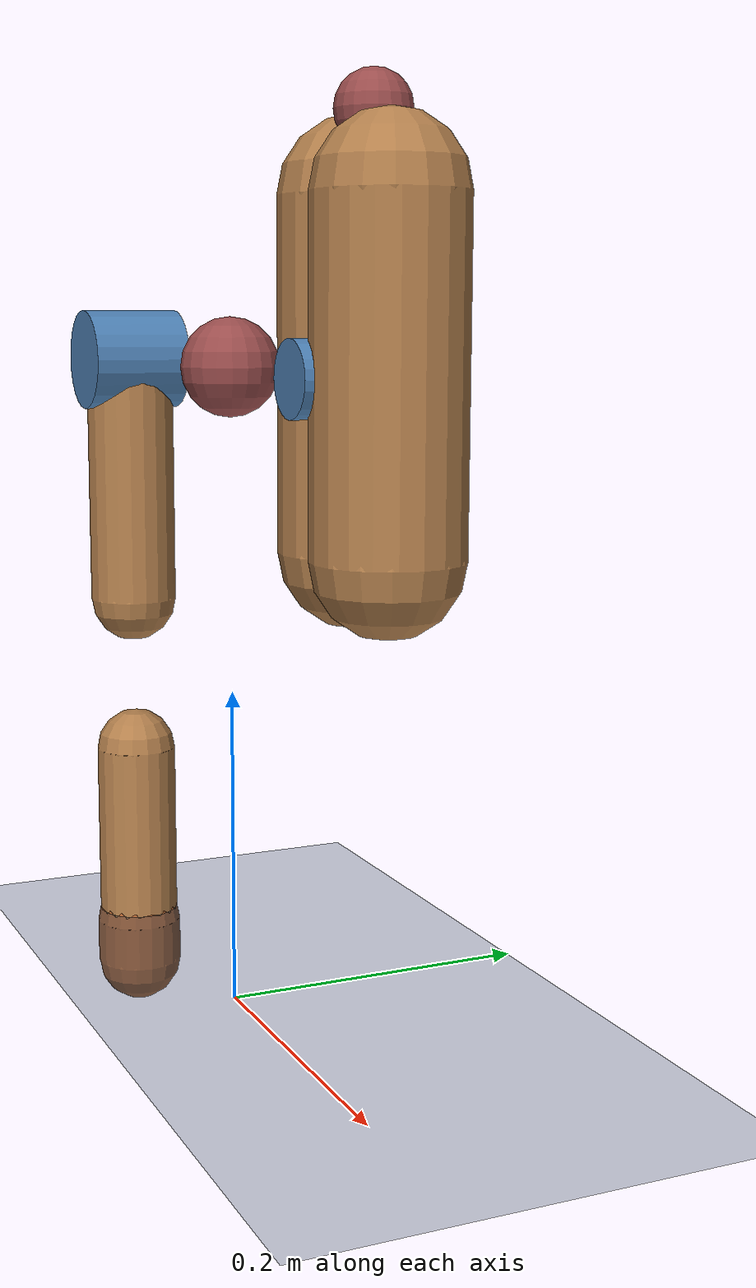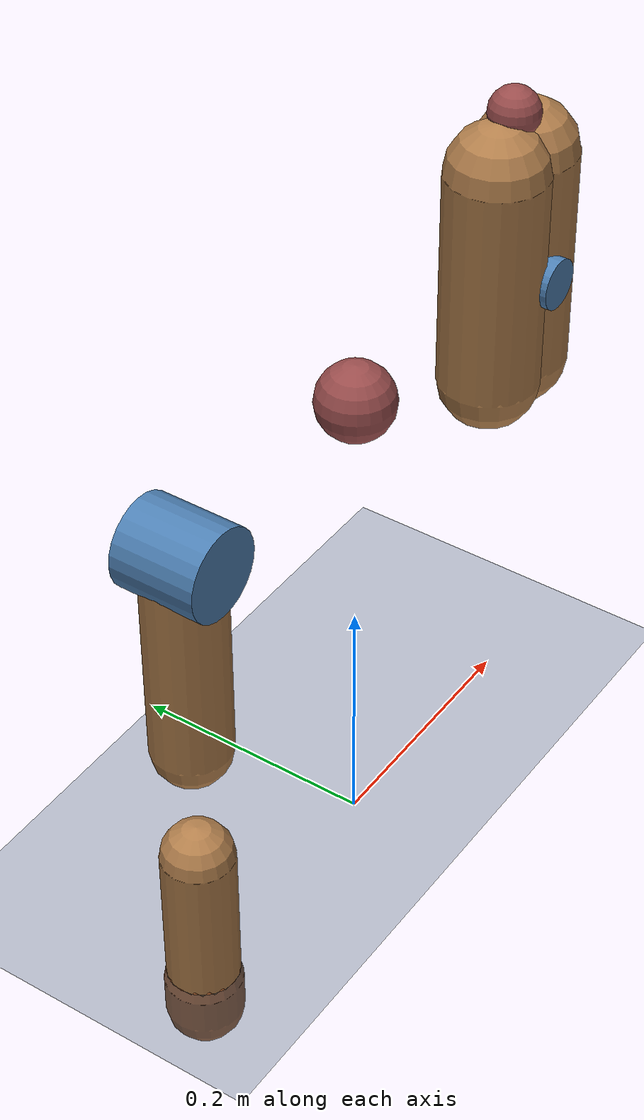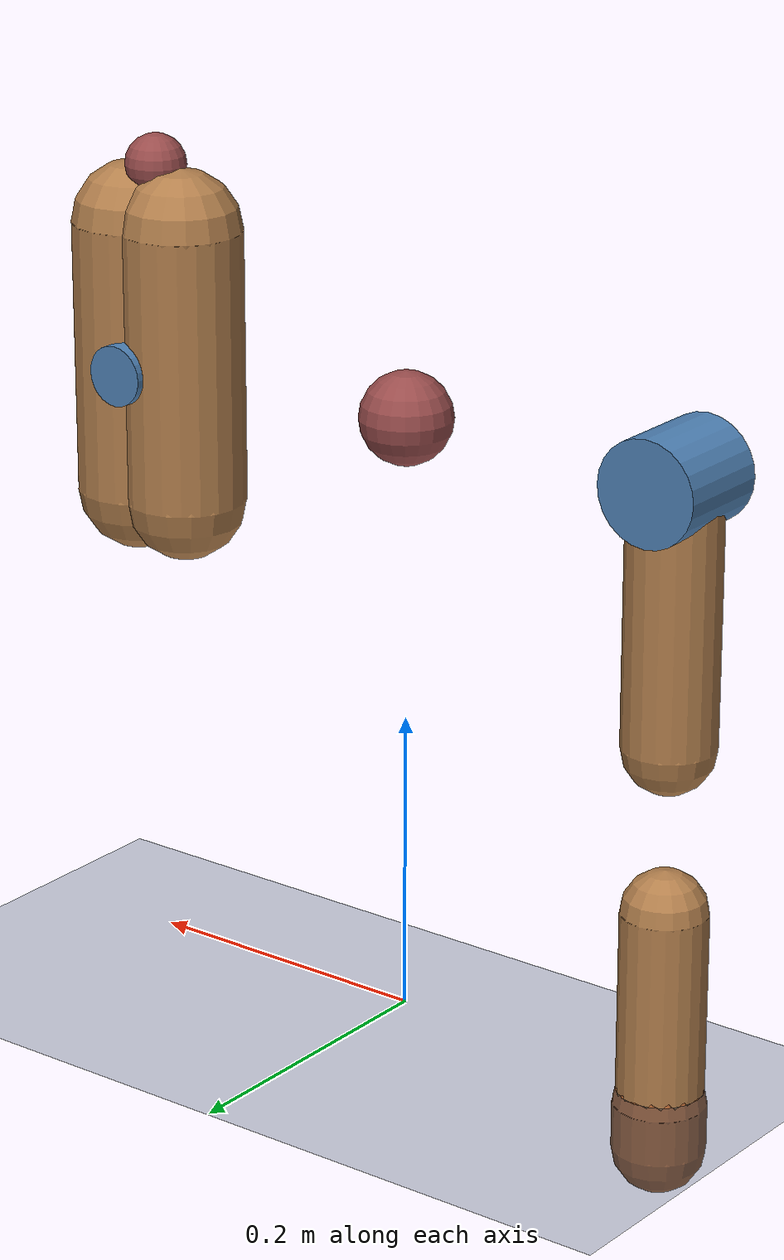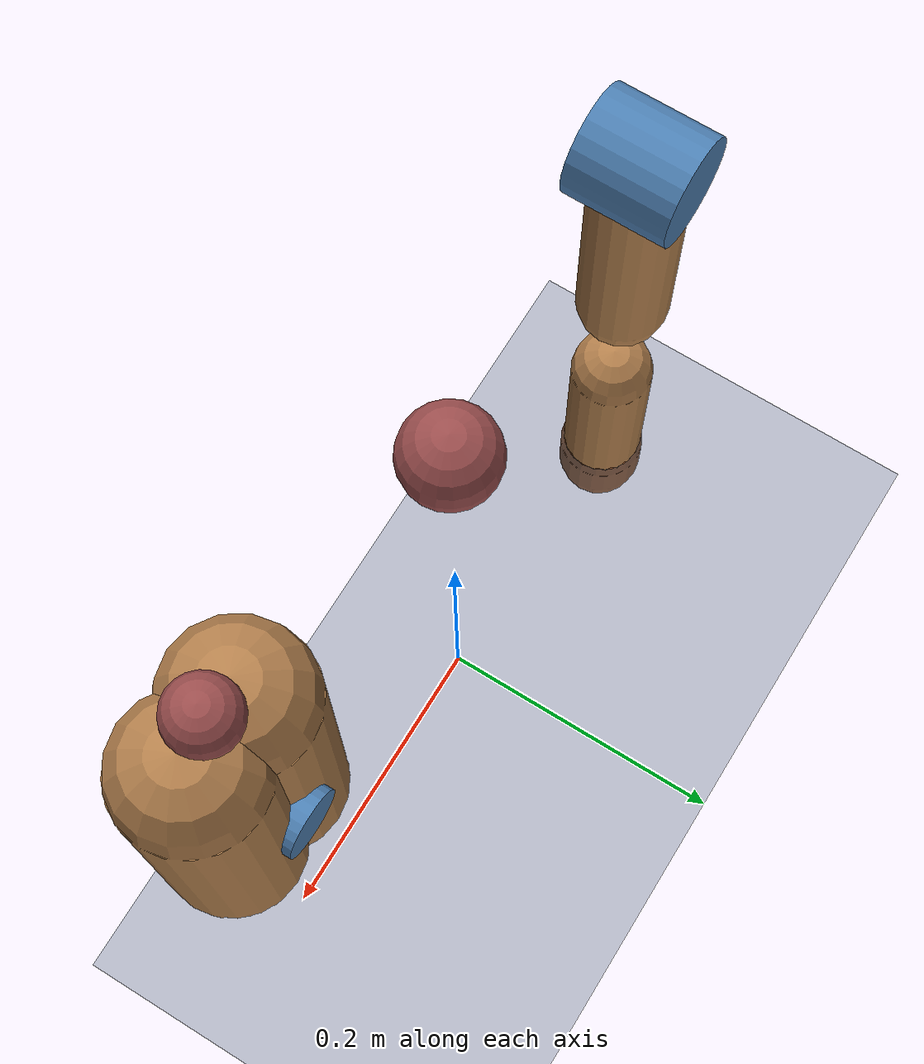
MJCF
<mujoco model="finger">
  <include file="./common/visual.xml"/>
  <include file="./common/skybox.xml"/>
  <include file="./common/materials.xml"/>

  <option timestep="0.01" cone="elliptic" iterations="200">
    <flag gravity="disable"/>
  </option>

  <default>
    <geom solimp="0 0.9 0.01" solref=".02 1"/>
    <joint type="hinge" axis="0 -1 0"/>
    <motor ctrllimited="true" ctrlrange="-1 1"/>
    <default class="finger">
      <joint damping="2.5" limited="true"/>
      <site type="ellipsoid" size=".025 .03 .025" material="site" group="3"/>
    </default>
  </default>

  <worldbody>
    <light name="light" directional="true" diffuse=".6 .6 .6" pos="0 0 2" specular=".3 .3 .3"/>
    <geom name="ground" type="plane" pos="0 0 0" size=".6 .2 10" material="grid"/>
    <camera name="cam0" pos="0 -1 .8" xyaxes="1 0 0 0 1 2"/>
    <camera name="cam1" pos="0 -1 .4" xyaxes="1 0 0 0 0 1" />

    <body name="proximal" pos="-.2 0 .4" childclass="finger">
      <geom name="proximal_decoration" type="cylinder" fromto="0 -.033 0 0 .033 0" size=".034" material="decoration"/>
      <joint name="proximal" range="-110 110" ref="-90"/>
      <geom name="proximal" type="capsule" material="self" size=".03" fromto="0 0 0 0 0 -.17"/>
      <body name="distal" pos="0 0 -.28" childclass="finger">
        <joint name="distal" range="-110 110"/>
        <geom name="distal" type="capsule" size=".028" material="self" fromto="0 0 0 0 0 -.16" contype="0" conaffinity="0"/>
        <geom name="fingertip" type="capsule" size=".03" material="effector" fromto="0 0 -.13 0 0 -.161"/>
        <site name="touchtop" pos=".01 0 -.25"/>
        <site name="touchbottom" pos="-.01 0 -.17"/>
      </body>
    </body>

    <body name="spinner" pos=".2 0 .4">
      <joint name="hinge" frictionloss=".1" damping=".5"/>
      <geom name="cap1" type="capsule" size=".04 .09" material="self" pos=".02 0 0"/>
      <geom name="cap2" type="capsule" size=".04 .09" material="self" pos="-.02 0 0"/>
      <site name="tip" type="sphere"  size=".02" pos="0 0 .13" material="target"/>
      <geom name="spinner_decoration" type="cylinder" fromto="0 -.045 0 0 .045 0" size=".02" material="decoration"/>
    </body>

    <site name="target" type="sphere" size=".03" pos="0 0 .4" material="target"/>
  </worldbody>

  <actuator>
    <motor name="proximal" joint="proximal" gear="30"/>
    <motor name="distal" joint="distal" gear="15"/>
  </actuator>

  <!-- All finger observations are functions of sensors. This is useful for finite-differencing. -->
  <sensor>
    <touch name="touchtop" site="touchtop"/>
  </sensor>

</mujoco>

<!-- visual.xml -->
<mujoco>
    <visual>
        <headlight ambient=".4 .4 .4" diffuse=".8 .8 .8" specular="0.1 0.1 0.1"/>
        <map znear=".01"/>
        <quality shadowsize="2048"/>
    </visual>
</mujoco>

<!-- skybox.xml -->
<mujoco>
    <asset>
        <texture name="skybox" type="skybox" builtin="gradient" rgb1=".4 .6 .8" rgb2="0 0 0"
                 width="800" height="800" mark="random" markrgb="1 1 1"/>
    </asset>
</mujoco>

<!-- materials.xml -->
<!--
Common textures, colors and materials to be used throughout this suite. Some
materials such as xxx_highlight are activated on occurence of certain events,
for example receiving a positive reward.
-->
<mujoco>
    <asset>
        <texture name="grid" type="2d" builtin="checker" rgb1=".1 .2 .3" rgb2=".2 .3 .4" width="300" height="300" mark="edge" markrgb=".2 .3 .4"/>
        <material name="grid" texture="grid" texrepeat="1 1" texuniform="true" reflectance=".2"/>
        <material name="self" rgba=".7 .5 .3 1"/>
        <material name="self_default" rgba=".7 .5 .3 1"/>
        <material name="self_highlight" rgba="0 .5 .3 1"/>
        <material name="effector" rgba=".7 .4 .2 1"/>
        <material name="effector_default" rgba=".7 .4 .2 1"/>
        <material name="effector_highlight" rgba="0 .5 .3 1"/>
        <material name="decoration" rgba=".3 .5 .7 1"/>
        <material name="eye" rgba="0 .2 1 1"/>
        <material name="target" rgba=".6 .3 .3 1"/>
        <material name="target_default" rgba=".6 .3 .3 1"/>
        <material name="target_highlight" rgba=".6 .3 .3 .4"/>
        <material name="site" rgba=".5 .5 .5 .3"/>
    </asset>
</mujoco>
